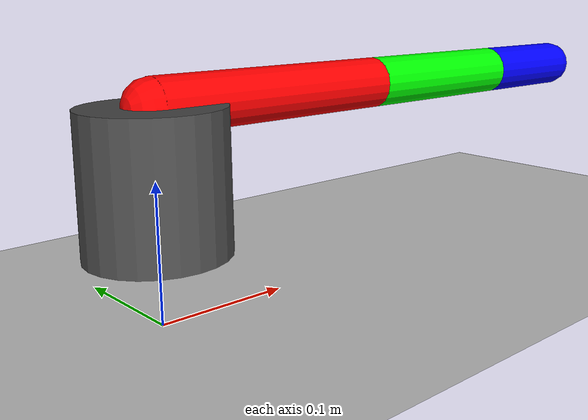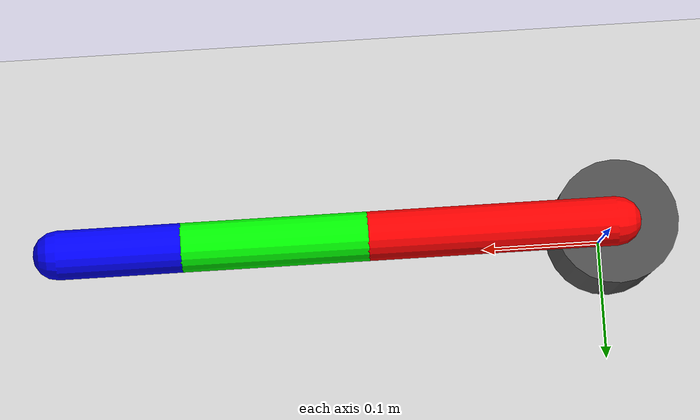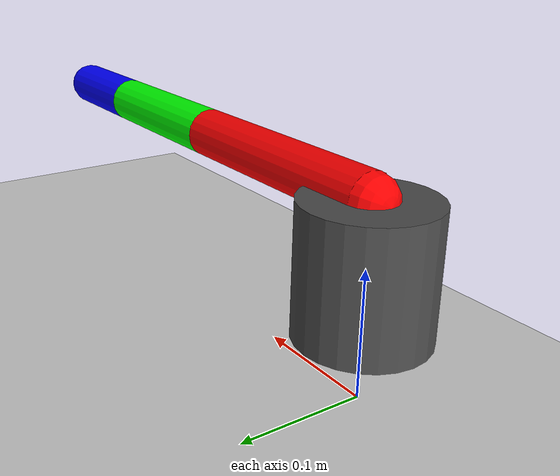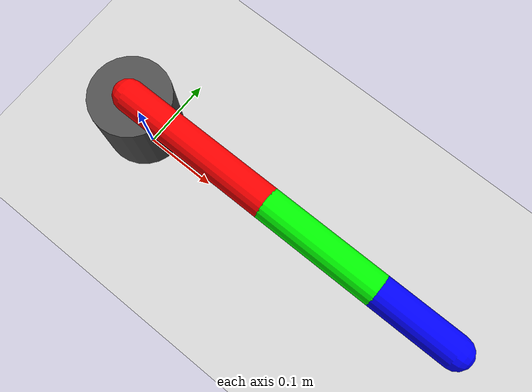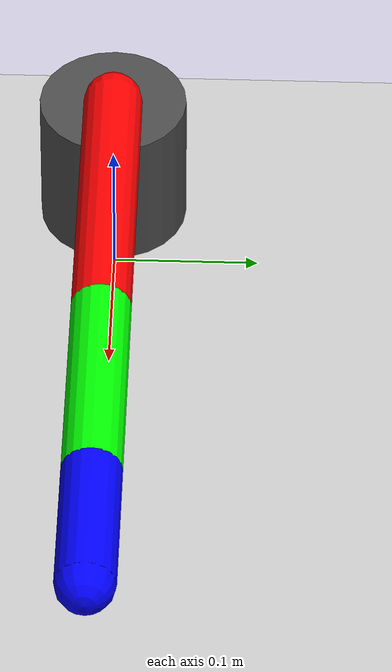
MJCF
<mujoco model="simple_arm">
  <!-- Simple 3-DOF arm for testing MJCF parsing -->
  <compiler angle="radian"/>

  <default>
    <joint axis="0 0 1" range="-3.14159 3.14159"/>
    <geom type="capsule" size="0.02"/>
  </default>

  <worldbody>
    <light pos="0 0 2"/>
    <geom type="plane" size="1 1 0.1" rgba="0.8 0.8 0.8 1"/>

    <body name="base" pos="0 0 0.1">
      <geom type="cylinder" size="0.05 0.05" rgba="0.3 0.3 0.3 1"/>
      <body name="link1" pos="0 0 0.05">
        <joint name="joint1" type="hinge" axis="0 0 1"/>
        <geom fromto="0 0 0 0.2 0 0" rgba="1 0 0 1"/>
        <body name="link2" pos="0.2 0 0">
          <joint name="joint2" type="hinge" axis="0 1 0"/>
          <geom fromto="0 0 0 0.15 0 0" rgba="0 1 0 1"/>
          <body name="link3" pos="0.15 0 0">
            <joint name="joint3" type="hinge" axis="0 1 0"/>
            <geom fromto="0 0 0 0.1 0 0" rgba="0 0 1 1"/>
            <site name="end_effector" pos="0.1 0 0"/>
          </body>
        </body>
      </body>
    </body>
  </worldbody>
</mujoco>
